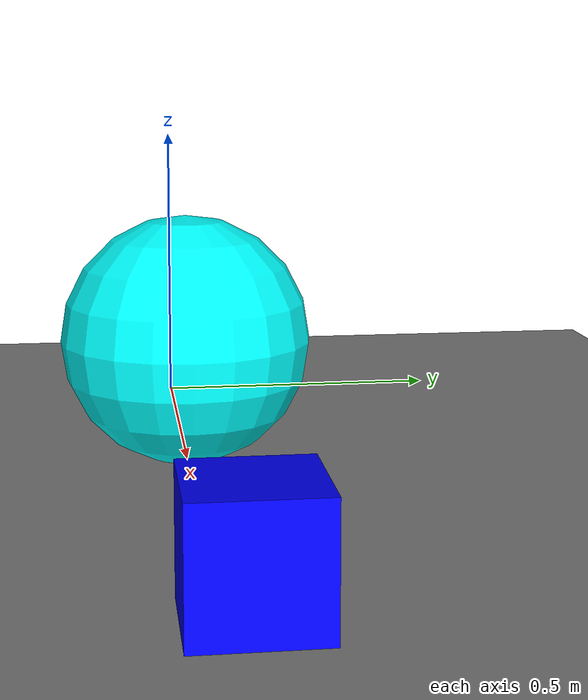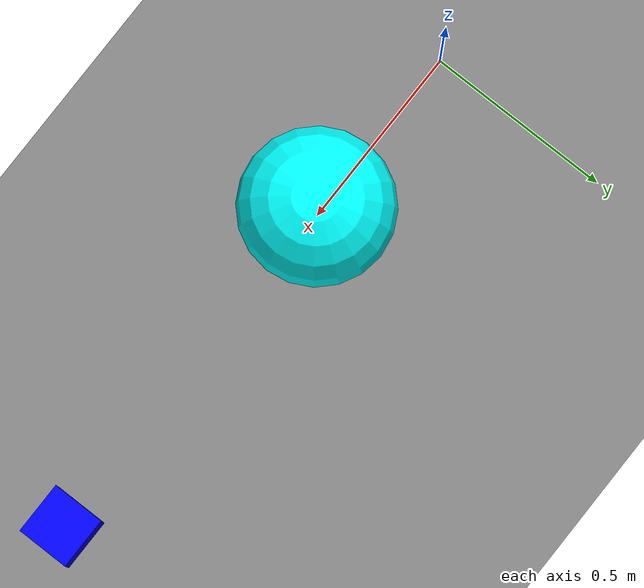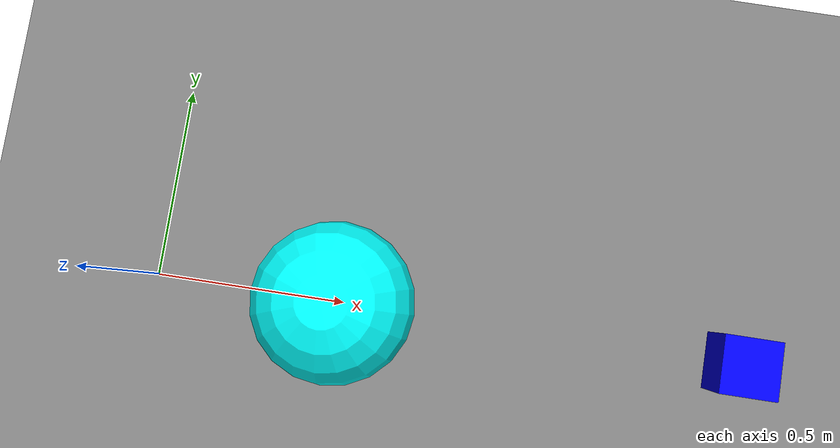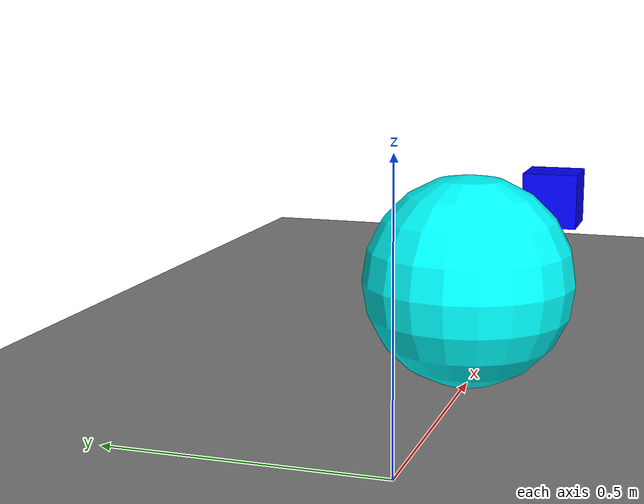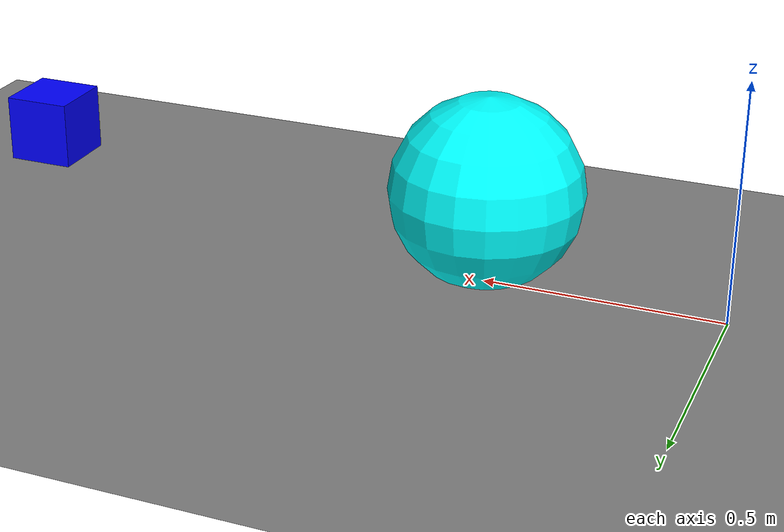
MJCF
<mujoco model="ballRob">
  <compiler angle="radian" autolimits="true"/>
  	<compiler angle="radian"/>
	<option timestep="0.005" integrator="RK4" solver="CG" gravity="0 0 -9.81">
		<flag contact="enable" multiccd="enable"/>
	</option>

  <default>
        <geom condim="4" solimp="0.99 0.99 0" solref="0.01 1" friction="1 0.06 0.001"/>
    </default>

	<asset>
    <texture type="skybox" builtin="gradient" rgb1="1 1 1" rgb2=".6 .8 1" width="256" height="256"/>
		<texture name="grid" type="2d" builtin="checker" width="112" height="112" rgb1="0 0 0" rgb2="1 1 1" />
		<material name="grid" texture="grid" texrepeat="1 1" texuniform="true" reflectance=".2" />
	</asset>

	<worldbody>
		<geom name="floor" size="0 0 .05" type="plane" material="grid" condim="3" />
		<light diffuse="1 1 1" pos="0 0 5" dir="0 0 -1" />
		<light diffuse="1 1 1" pos="2 -1 5" dir="0 0 -1" />
		<light diffuse="1 1 1" pos="1 1 5" dir="0 0 -1" />
	</worldbody>
  <worldbody>
    <body name="box_link" pos="1.5 0 0.2">
      <freejoint/>
      <geom name="blue_box" type="box" size="0.07 0.07 0.07"  rgba="0 0 1 1"/>
    </body>

    <body name="ball_link" pos="0.5 0 0.2">
      <joint name="transx_joint" type="slide" axis="1 0 0" limited="true" range="-50.0 50.0"/>
      <joint name="transy_joint" type="slide" axis="0 1 0" limited="true" range="-50.0 50.0"/>
      <joint name="transz_joint" type="slide" axis="0 0 1" limited="true" range="0.0 2.0"/>
      <joint name="rotx_joint" type="hinge" axis="1 0 0" limited="true" range="-3.14 3.14"/>
      <joint name="roty_joint" type="hinge" axis="0 1 0" limited="true" range="-3.14 3.14"/>
      <joint name="rotz_joint" type="hinge" axis="0 0 1" limited="true" range="-3.14 3.14"/>
      <geom name="ball" type="sphere" size="0.2" rgba="0 1 1 1" friction=".1 .1 .1" mass="1"/>
    </body>
  </worldbody>
  <actuator>
      <motor name="torque0" joint="transx_joint"  gear="1" />
      <motor name="torque1" joint="transy_joint"  gear="1" />
      <motor name="torque2" joint="transz_joint"  gear="1" />
      <motor name="torque3" joint="rotx_joint"  gear="1" />
      <motor name="torque4" joint="roty_joint"  gear="1" />
      <motor name="torque5" joint="rotz_joint"  gear="1" />
  </actuator>
</mujoco>
